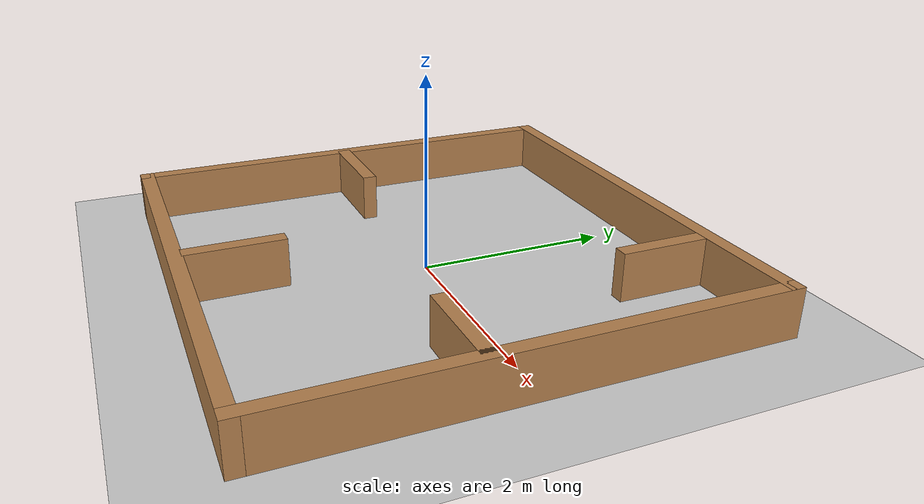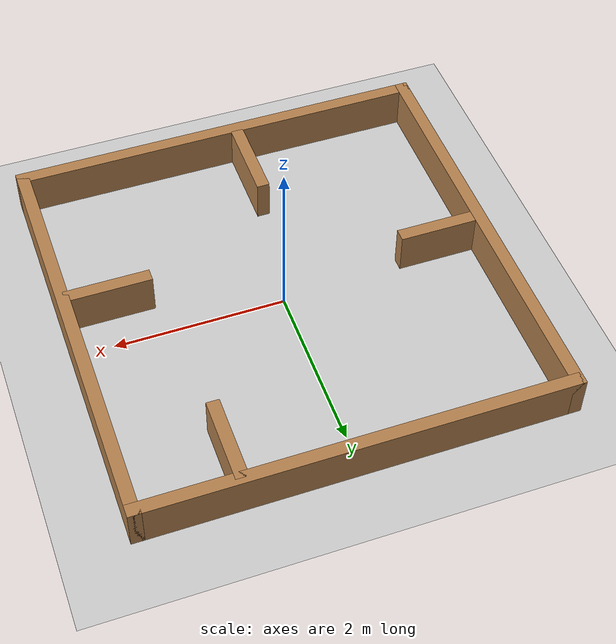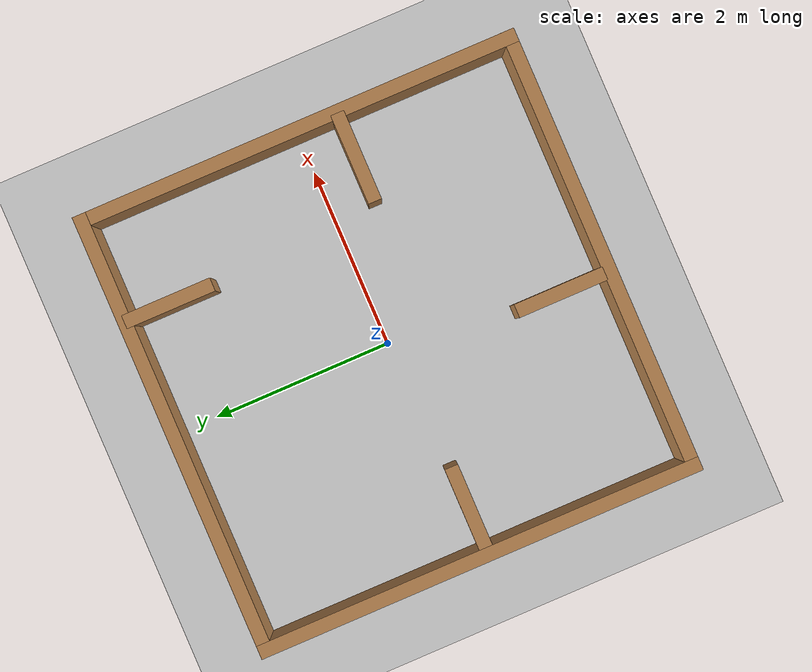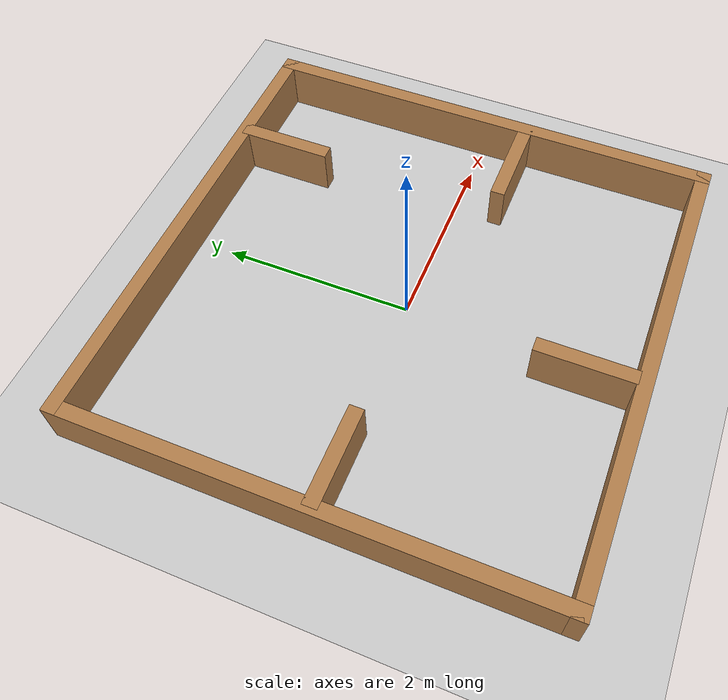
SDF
<sdf version='1.4'>
  <world name='default'>
    <!-- A global light source -->
    <include>
      <uri>model://sun</uri>
    </include>

    <!-- A ground plane -->
    <include>
      <uri>model://ground_plane</uri>
    </include>

    <physics type="ode">
      <real_time_update_rate>0</real_time_update_rate>
      <max_step_size>0.001</max_step_size>
      <real_time_factor>1</real_time_factor>
      <ode>
        <solver>
          <type>quick</type>
          <iters>150</iters>
          <precon_iters>0</precon_iters>
          <sor>1.400000</sor>
          <use_dynamic_moi_rescaling>1</use_dynamic_moi_rescaling>
        </solver>
        <constraints>
          <cfm>0.00001</cfm>
          <erp>0.2</erp>
          <contact_max_correcting_vel>2000.000000</contact_max_correcting_vel>
          <contact_surface_layer>0.01000</contact_surface_layer>
        </constraints>
      </ode>
    </physics>

    <!-- Load model -->
    <include>
      <uri>model://turtlebot3_plaza2</uri>
    </include>

    <scene>
      <ambient>0.4 0.4 0.4 1</ambient>
      <background>0.7 0.7 0.7 1</background>
      <shadows>false</shadows>
    </scene>

    <gui fullscreen='0'>
      <camera name='user_camera'>
        <pose>0.0 0.0 17.0 0 1.5708 0</pose>
        <view_controller>orbit</view_controller>
      </camera>
    </gui>
  </world>
</sdf>

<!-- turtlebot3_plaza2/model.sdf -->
<sdf version='1.6'>
  <model name='turtlebot3_plaza'>
    <pose frame=''>0 0 0 0 -0 0</pose>
    <link name='Wall_0'>
      <collision name='Wall_0_Collision'>
        <geometry>
          <box>
            <size>5 0.15 0.5</size>
          </box>
        </geometry>
        <pose frame=''>0 0 0.25 0 -0 0</pose>
      </collision>
      <visual name='Wall_0_Visual'>
        <pose frame=''>0 0 0.25 0 -0 0</pose>
        <geometry>
          <box>
            <size>5 0.15 0.5</size>
          </box>
        </geometry>
        <material>
          <script>
            <uri>file://media/materials/scripts/gazebo.material</uri>
            <name>Gazebo/Wood</name>
          </script>
          <ambient>1 1 1 1</ambient>
        </material>
      </visual>
      <pose frame=''>-2.425 0 0 0 -0 1.5708</pose>
    </link>
    <link name='Wall_11'>
      <collision name='Wall_11_Collision'>
        <geometry>
          <box>
            <size>1 0.15 0.5</size>
          </box>
        </geometry>
        <pose frame=''>0 0 0.25 0 -0 0</pose>
      </collision>
      <visual name='Wall_11_Visual'>
        <pose frame=''>0 0 0.25 0 -0 0</pose>
        <geometry>
          <box>
            <size>1 0.15 0.5</size>
          </box>
        </geometry>
        <material>
          <script>
            <uri>file://media/materials/scripts/gazebo.material</uri>
            <name>Gazebo/Wood</name>
          </script>
          <ambient>1 1 1 1</ambient>
        </material>
      </visual>
      <pose frame=''>-1.937 -0.1 0 0 -0 0</pose>
    </link>
    <link name='Wall_13'>
      <collision name='Wall_13_Collision'>
        <geometry>
          <box>
            <size>1 0.15 0.5</size>
          </box>
        </geometry>
        <pose frame=''>0 0 0.25 0 -0 0</pose>
      </collision>
      <visual name='Wall_13_Visual'>
        <pose frame=''>0 0 0.25 0 -0 0</pose>
        <geometry>
          <box>
            <size>1 0.15 0.5</size>
          </box>
        </geometry>
        <material>
          <script>
            <uri>file://media/materials/scripts/gazebo.material</uri>
            <name>Gazebo/Wood</name>
          </script>
          <ambient>1 1 1 1</ambient>
        </material>
      </visual>
      <pose frame=''>-0.22 -1.866 0 0 0 -1.5708</pose>
    </link>
    <link name='Wall_17'>
      <collision name='Wall_17_Collision'>
        <geometry>
          <box>
            <size>1 0.15 0.5</size>
          </box>
        </geometry>
        <pose frame=''>0 0 0.25 0 -0 0</pose>
      </collision>
      <visual name='Wall_17_Visual'>
        <pose frame=''>0 0 0.25 0 -0 0</pose>
        <geometry>
          <box>
            <size>1 0.15 0.5</size>
          </box>
        </geometry>
        <material>
          <script>
            <uri>file://media/materials/scripts/gazebo.material</uri>
            <name>Gazebo/Wood</name>
          </script>
          <ambient>1 1 1 1</ambient>
        </material>
      </visual>
      <pose frame=''>1.288 1.93 0 0 0 -1.5708</pose>
    </link>
    <link name='Wall_19'>
      <collision name='Wall_19_Collision'>
        <geometry>
          <box>
            <size>1 0.15 0.5</size>
          </box>
        </geometry>
        <pose frame=''>0 0 0.25 0 -0 0</pose>
      </collision>
      <visual name='Wall_19_Visual'>
        <pose frame=''>0 0 0.25 0 -0 0</pose>
        <geometry>
          <box>
            <size>1 0.15 0.5</size>
          </box>
        </geometry>
        <material>
          <script>
            <uri>file://media/materials/scripts/gazebo.material</uri>
            <name>Gazebo/Wood</name>
          </script>
          <ambient>1 1 1 1</ambient>
        </material>
      </visual>
      <pose frame=''>1.91128 -0.4632 0 0 -0 0</pose>
    </link>
    <link name='Wall_2'>
      <collision name='Wall_2_Collision'>
        <geometry>
          <box>
            <size>5 0.15 0.5</size>
          </box>
        </geometry>
        <pose frame=''>0 0 0.25 0 -0 0</pose>
      </collision>
      <visual name='Wall_2_Visual'>
        <pose frame=''>0 0 0.25 0 -0 0</pose>
        <geometry>
          <box>
            <size>5 0.15 0.5</size>
          </box>
        </geometry>
        <material>
          <script>
            <uri>file://media/materials/scripts/gazebo.material</uri>
            <name>Gazebo/Wood</name>
          </script>
          <ambient>1 1 1 1</ambient>
        </material>
      </visual>
      <pose frame=''>0 2.425 0 0 -0 0</pose>
    </link>
    <link name='Wall_3'>
      <collision name='Wall_3_Collision'>
        <geometry>
          <box>
            <size>5 0.15 0.5</size>
          </box>
        </geometry>
        <pose frame=''>0 0 0.25 0 -0 0</pose>
      </collision>
      <visual name='Wall_3_Visual'>
        <pose frame=''>0 0 0.25 0 -0 0</pose>
        <geometry>
          <box>
            <size>5 0.15 0.5</size>
          </box>
        </geometry>
        <material>
          <script>
            <uri>file://media/materials/scripts/gazebo.material</uri>
            <name>Gazebo/Wood</name>
          </script>
          <ambient>1 1 1 1</ambient>
        </material>
      </visual>
      <pose frame=''>2.425 0 0 0 0 -1.5708</pose>
    </link>
    <link name='Wall_4'>
      <collision name='Wall_4_Collision'>
        <geometry>
          <box>
            <size>5 0.15 0.5</size>
          </box>
        </geometry>
        <pose frame=''>0 0 0.25 0 -0 0</pose>
      </collision>
      <visual name='Wall_4_Visual'>
        <pose frame=''>0 0 0.25 0 -0 0</pose>
        <geometry>
          <box>
            <size>5 0.15 0.5</size>
          </box>
        </geometry>
        <material>
          <script>
            <uri>file://media/materials/scripts/gazebo.material</uri>
            <name>Gazebo/Wood</name>
          </script>
          <ambient>1 1 1 1</ambient>
        </material>
      </visual>
      <pose frame=''>0 -2.425 0 0 -0 3.14159</pose>
    </link>
    <static>1</static>
  </model>
</sdf>
